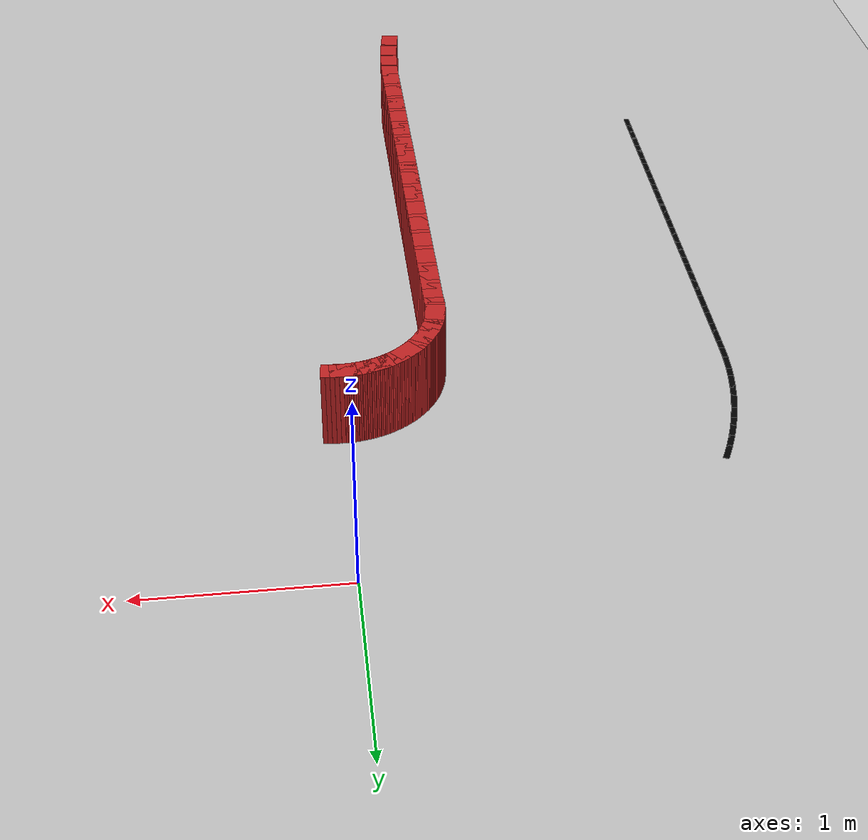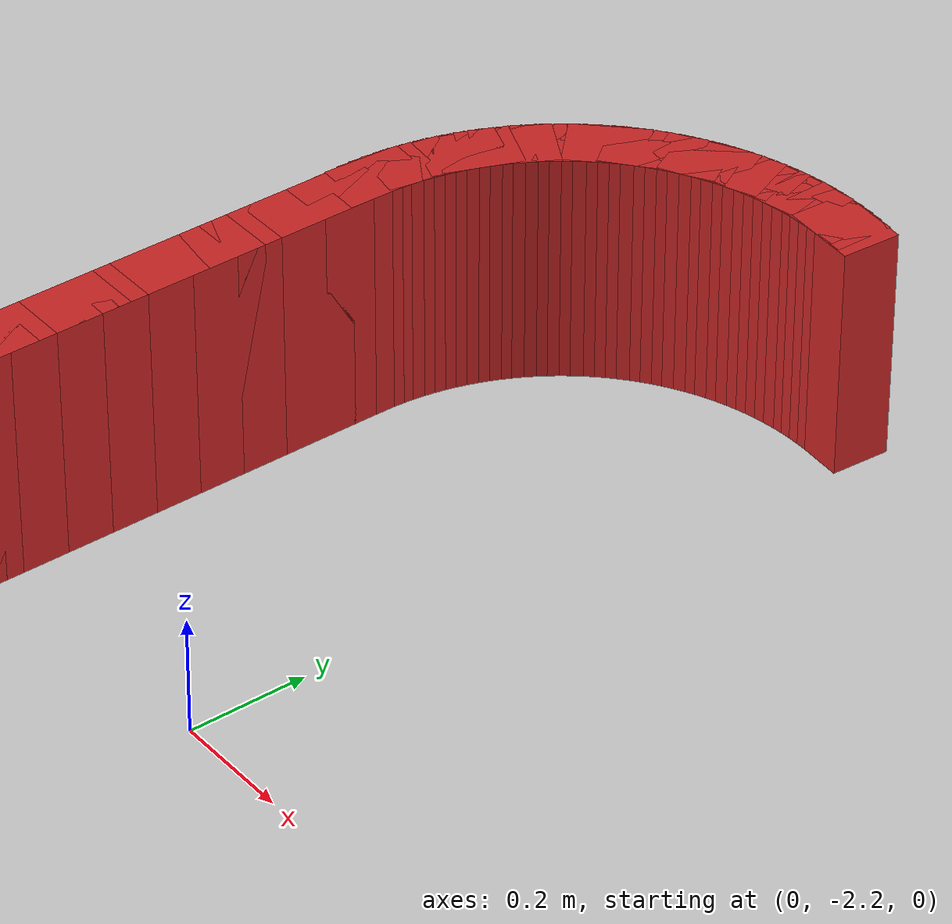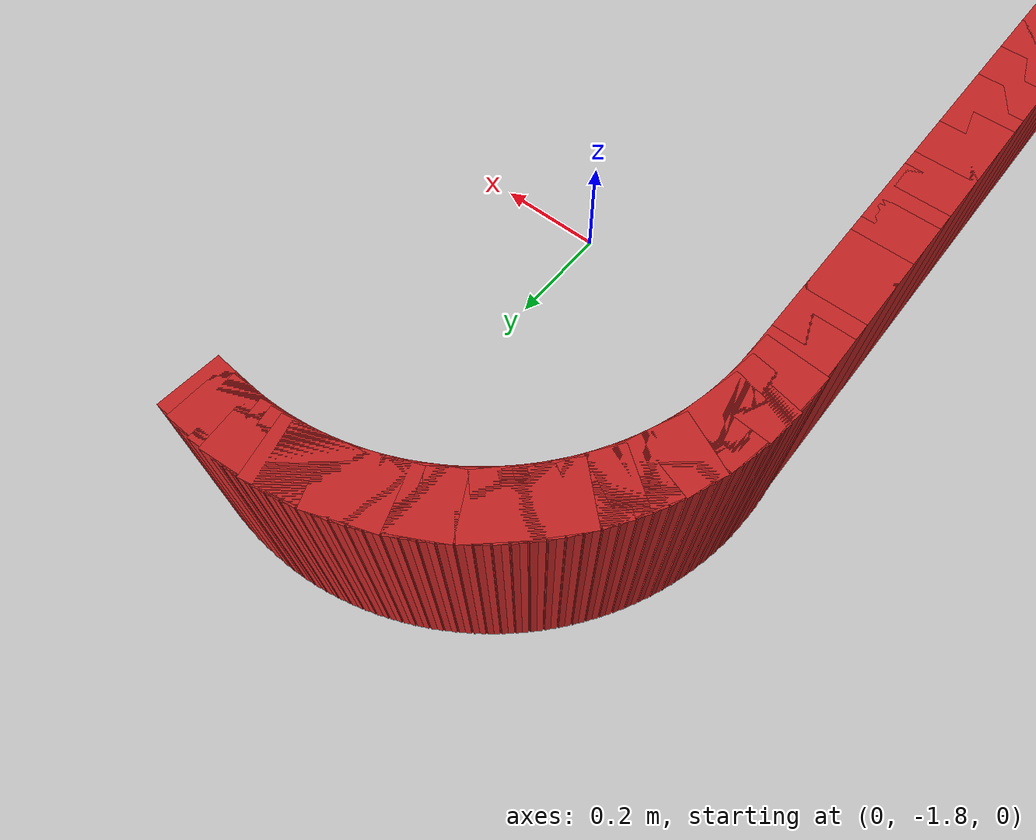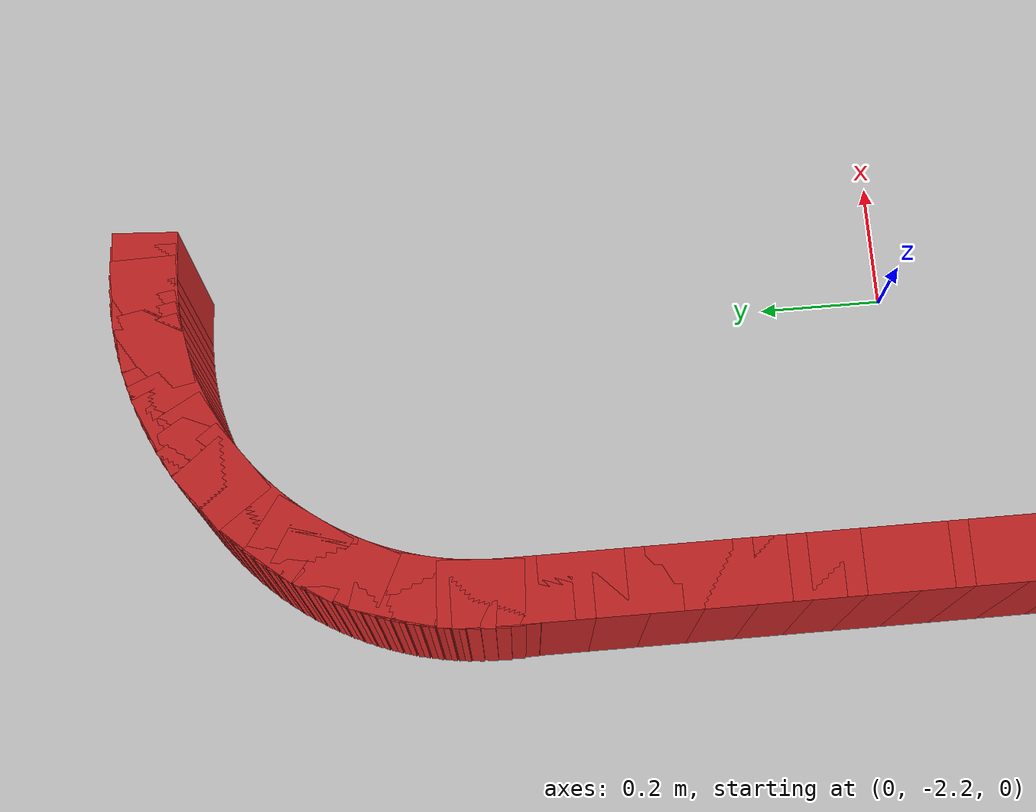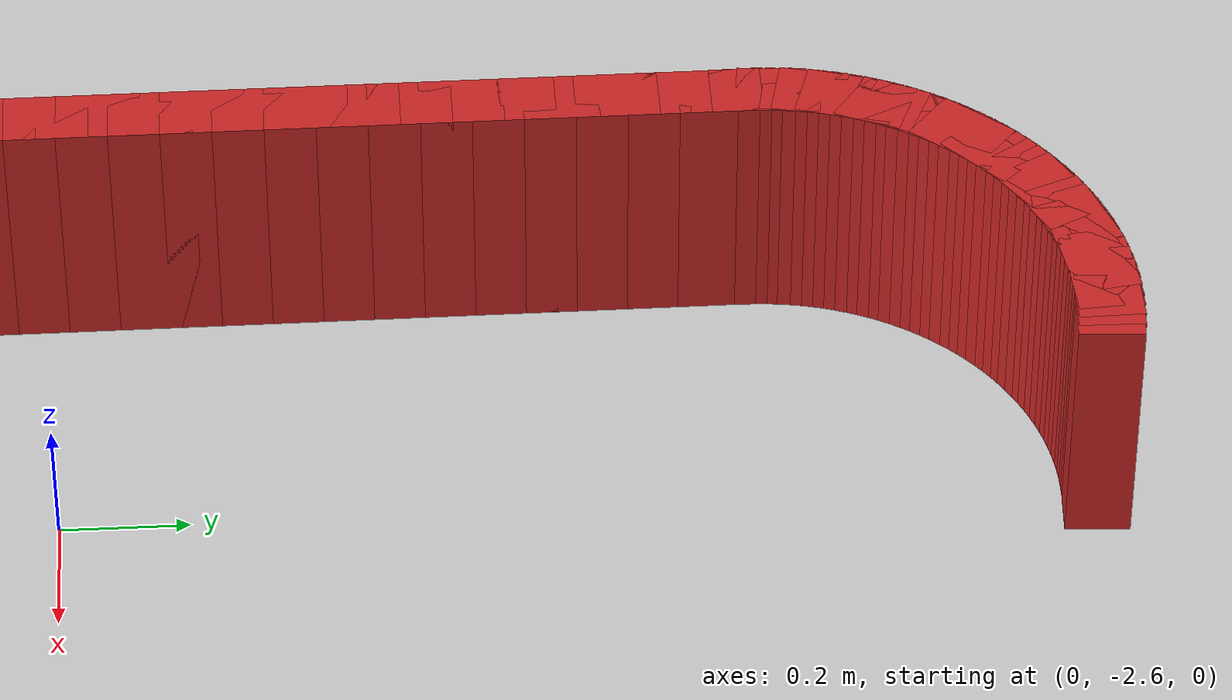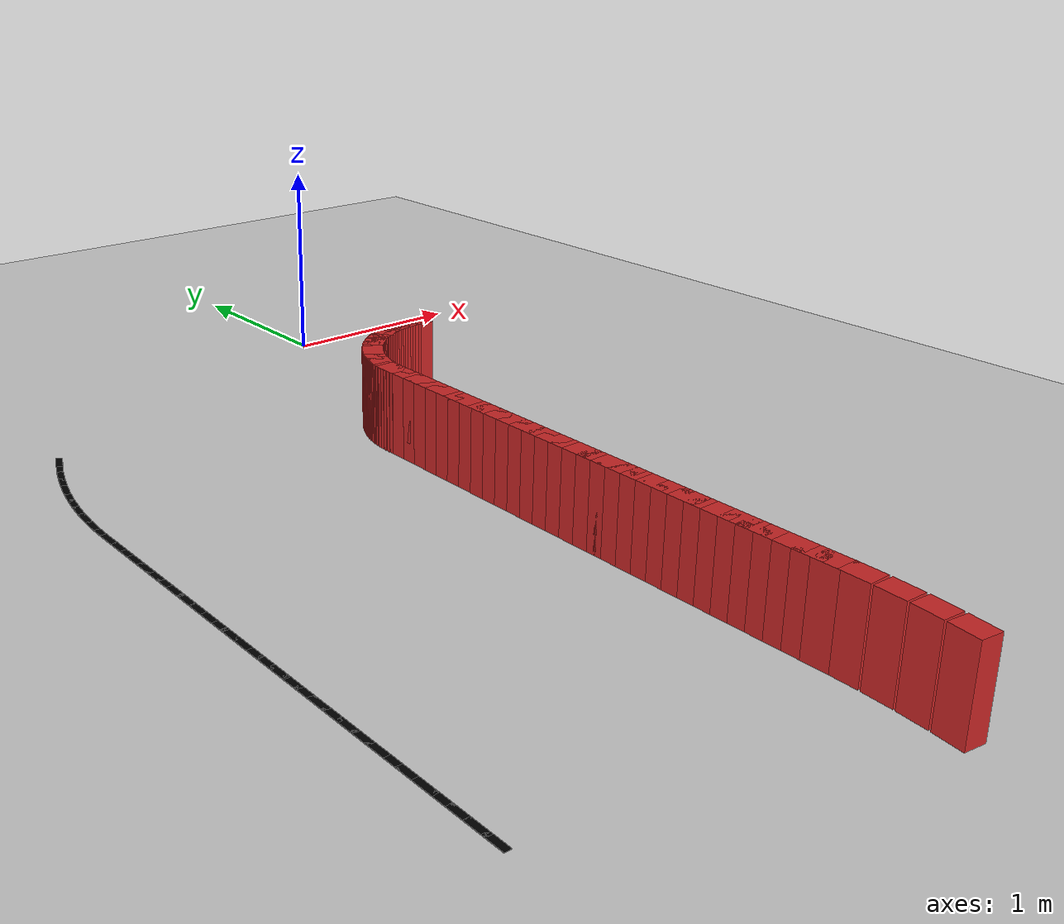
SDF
<sdf version="1.6">
 <world name="new_race_track">
  <include><uri>model://ground_plane</uri></include>
  <include><uri>model://sun</uri></include>
  <model name="ow_149">
   <static>true</static>
   <pose>-0.5351 -4.4917 0.200 0 0 1.4298</pose>
   <link name="l">
    <collision name="c"><geometry><box><size>0.1305 0.1 0.4</size></box></geometry></collision>
    <visual name="v">
     <geometry><box><size>0.1305 0.1 0.4</size></box></geometry>
     <material><ambient>0.8 0.15 0.15 1</ambient><diffuse>0.8 0.15 0.15 1</diffuse></material>
    </visual>
   </link>
  </model>
  <model name="ow_150">
   <static>true</static>
   <pose>-0.5181 -4.3518 0.200 0 0 1.4701</pose>
   <link name="l">
    <collision name="c"><geometry><box><size>0.1305 0.1 0.4</size></box></geometry></collision>
    <visual name="v">
     <geometry><box><size>0.1305 0.1 0.4</size></box></geometry>
     <material><ambient>0.8 0.15 0.15 1</ambient><diffuse>0.8 0.15 0.15 1</diffuse></material>
    </visual>
   </link>
  </model>
  <model name="ow_151">
   <static>true</static>
   <pose>-0.5068 -4.2113 0.200 0 0 1.5104</pose>
   <link name="l">
    <collision name="c"><geometry><box><size>0.1305 0.1 0.4</size></box></geometry></collision>
    <visual name="v">
     <geometry><box><size>0.1305 0.1 0.4</size></box></geometry>
     <material><ambient>0.8 0.15 0.15 1</ambient><diffuse>0.8 0.15 0.15 1</diffuse></material>
    </visual>
   </link>
  </model>
  <model name="ow_152">
   <static>true</static>
   <pose>-0.5011 -4.0705 0.200 0 0 1.5507</pose>
   <link name="l">
    <collision name="c"><geometry><box><size>0.1305 0.1 0.4</size></box></geometry></collision>
    <visual name="v">
     <geometry><box><size>0.1305 0.1 0.4</size></box></geometry>
     <material><ambient>0.8 0.15 0.15 1</ambient><diffuse>0.8 0.15 0.15 1</diffuse></material>
    </visual>
   </link>
  </model>
  <model name="ow_153">
   <static>true</static>
   <pose>-0.5000 -3.9600 0.200 0 0 1.5708</pose>
   <link name="l">
    <collision name="c"><geometry><box><size>0.1300 0.1 0.4</size></box></geometry></collision>
    <visual name="v">
     <geometry><box><size>0.1300 0.1 0.4</size></box></geometry>
     <material><ambient>0.8 0.15 0.15 1</ambient><diffuse>0.8 0.15 0.15 1</diffuse></material>
    </visual>
   </link>
  </model>
  <model name="ow_154">
   <static>true</static>
   <pose>-0.5000 -3.8800 0.200 0 0 1.5708</pose>
   <link name="l">
    <collision name="c"><geometry><box><size>0.1300 0.1 0.4</size></box></geometry></collision>
    <visual name="v">
     <geometry><box><size>0.1300 0.1 0.4</size></box></geometry>
     <material><ambient>0.8 0.15 0.15 1</ambient><diffuse>0.8 0.15 0.15 1</diffuse></material>
    </visual>
   </link>
  </model>
  <model name="ow_155">
   <static>true</static>
   <pose>-0.5000 -3.8000 0.200 0 0 1.5708</pose>
   <link name="l">
    <collision name="c"><geometry><box><size>0.1300 0.1 0.4</size></box></geometry></collision>
    <visual name="v">
     <geometry><box><size>0.1300 0.1 0.4</size></box></geometry>
     <material><ambient>0.8 0.15 0.15 1</ambient><diffuse>0.8 0.15 0.15 1</diffuse></material>
    </visual>
   </link>
  </model>
  <model name="ow_156">
   <static>true</static>
   <pose>-0.5000 -3.7200 0.200 0 0 1.5708</pose>
   <link name="l">
    <collision name="c"><geometry><box><size>0.1300 0.1 0.4</size></box></geometry></collision>
    <visual name="v">
     <geometry><box><size>0.1300 0.1 0.4</size></box></geometry>
     <material><ambient>0.8 0.15 0.15 1</ambient><diffuse>0.8 0.15 0.15 1</diffuse></material>
    </visual>
   </link>
  </model>
  <model name="ow_157">
   <static>true</static>
   <pose>-0.5000 -3.6400 0.200 0 0 1.5708</pose>
   <link name="l">
    <collision name="c"><geometry><box><size>0.1300 0.1 0.4</size></box></geometry></collision>
    <visual name="v">
     <geometry><box><size>0.1300 0.1 0.4</size></box></geometry>
     <material><ambient>0.8 0.15 0.15 1</ambient><diffuse>0.8 0.15 0.15 1</diffuse></material>
    </visual>
   </link>
  </model>
  <model name="ow_158">
   <static>true</static>
   <pose>-0.5000 -3.5600 0.200 0 0 1.5708</pose>
   <link name="l">
    <collision name="c"><geometry><box><size>0.1300 0.1 0.4</size></box></geometry></collision>
    <visual name="v">
     <geometry><box><size>0.1300 0.1 0.4</size></box></geometry>
     <material><ambient>0.8 0.15 0.15 1</ambient><diffuse>0.8 0.15 0.15 1</diffuse></material>
    </visual>
   </link>
  </model>
  <model name="ow_159">
   <static>true</static>
   <pose>-0.5000 -3.4800 0.200 0 0 1.5708</pose>
   <link name="l">
    <collision name="c"><geometry><box><size>0.1300 0.1 0.4</size></box></geometry></collision>
    <visual name="v">
     <geometry><box><size>0.1300 0.1 0.4</size></box></geometry>
     <material><ambient>0.8 0.15 0.15 1</ambient><diffuse>0.8 0.15 0.15 1</diffuse></material>
    </visual>
   </link>
  </model>
  <model name="ow_160">
   <static>true</static>
   <pose>-0.5000 -3.4000 0.200 0 0 1.5708</pose>
   <link name="l">
    <collision name="c"><geometry><box><size>0.1300 0.1 0.4</size></box></geometry></collision>
    <visual name="v">
     <geometry><box><size>0.1300 0.1 0.4</size></box></geometry>
     <material><ambient>0.8 0.15 0.15 1</ambient><diffuse>0.8 0.15 0.15 1</diffuse></material>
    </visual>
   </link>
  </model>
  <model name="ow_161">
   <static>true</static>
   <pose>-0.5000 -3.3200 0.200 0 0 1.5708</pose>
   <link name="l">
    <collision name="c"><geometry><box><size>0.1300 0.1 0.4</size></box></geometry></collision>
    <visual name="v">
     <geometry><box><size>0.1300 0.1 0.4</size></box></geometry>
     <material><ambient>0.8 0.15 0.15 1</ambient><diffuse>0.8 0.15 0.15 1</diffuse></material>
    </visual>
   </link>
  </model>
  <model name="ow_162">
   <static>true</static>
   <pose>-0.5000 -3.2400 0.200 0 0 1.5708</pose>
   <link name="l">
    <collision name="c"><geometry><box><size>0.1300 0.1 0.4</size></box></geometry></collision>
    <visual name="v">
     <geometry><box><size>0.1300 0.1 0.4</size></box></geometry>
     <material><ambient>0.8 0.15 0.15 1</ambient><diffuse>0.8 0.15 0.15 1</diffuse></material>
    </visual>
   </link>
  </model>
  <model name="ow_163">
   <static>true</static>
   <pose>-0.5000 -3.1600 0.200 0 0 1.5708</pose>
   <link name="l">
    <collision name="c"><geometry><box><size>0.1300 0.1 0.4</size></box></geometry></collision>
    <visual name="v">
     <geometry><box><size>0.1300 0.1 0.4</size></box></geometry>
     <material><ambient>0.8 0.15 0.15 1</ambient><diffuse>0.8 0.15 0.15 1</diffuse></material>
    </visual>
   </link>
  </model>
  <model name="ow_164">
   <static>true</static>
   <pose>-0.5000 -3.0800 0.200 0 0 1.5708</pose>
   <link name="l">
    <collision name="c"><geometry><box><size>0.1300 0.1 0.4</size></box></geometry></collision>
    <visual name="v">
     <geometry><box><size>0.1300 0.1 0.4</size></box></geometry>
     <material><ambient>0.8 0.15 0.15 1</ambient><diffuse>0.8 0.15 0.15 1</diffuse></material>
    </visual>
   </link>
  </model>
  <model name="ow_165">
   <static>true</static>
   <pose>-0.5000 -3.0000 0.200 0 0 1.5708</pose>
   <link name="l">
    <collision name="c"><geometry><box><size>0.1300 0.1 0.4</size></box></geometry></collision>
    <visual name="v">
     <geometry><box><size>0.1300 0.1 0.4</size></box></geometry>
     <material><ambient>0.8 0.15 0.15 1</ambient><diffuse>0.8 0.15 0.15 1</diffuse></material>
    </visual>
   </link>
  </model>
  <model name="ow_166">
   <static>true</static>
   <pose>-0.5000 -2.9200 0.200 0 0 1.5708</pose>
   <link name="l">
    <collision name="c"><geometry><box><size>0.1300 0.1 0.4</size></box></geometry></collision>
    <visual name="v">
     <geometry><box><size>0.1300 0.1 0.4</size></box></geometry>
     <material><ambient>0.8 0.15 0.15 1</ambient><diffuse>0.8 0.15 0.15 1</diffuse></material>
    </visual>
   </link>
  </model>
  <model name="ow_167">
   <static>true</static>
   <pose>-0.5000 -2.8400 0.200 0 0 1.5708</pose>
   <link name="l">
    <collision name="c"><geometry><box><size>0.1300 0.1 0.4</size></box></geometry></collision>
    <visual name="v">
     <geometry><box><size>0.1300 0.1 0.4</size></box></geometry>
     <material><ambient>0.8 0.15 0.15 1</ambient><diffuse>0.8 0.15 0.15 1</diffuse></material>
    </visual>
   </link>
  </model>
  <model name="ow_168">
   <static>true</static>
   <pose>-0.5000 -2.7600 0.200 0 0 1.5708</pose>
   <link name="l">
    <collision name="c"><geometry><box><size>0.1300 0.1 0.4</size></box></geometry></collision>
    <visual name="v">
     <geometry><box><size>0.1300 0.1 0.4</size></box></geometry>
     <material><ambient>0.8 0.15 0.15 1</ambient><diffuse>0.8 0.15 0.15 1</diffuse></material>
    </visual>
   </link>
  </model>
  <model name="ow_169">
   <static>true</static>
   <pose>-0.5000 -2.6800 0.200 0 0 1.5708</pose>
   <link name="l">
    <collision name="c"><geometry><box><size>0.1300 0.1 0.4</size></box></geometry></collision>
    <visual name="v">
     <geometry><box><size>0.1300 0.1 0.4</size></box></geometry>
     <material><ambient>0.8 0.15 0.15 1</ambient><diffuse>0.8 0.15 0.15 1</diffuse></material>
    </visual>
   </link>
  </model>
  <model name="ow_170">
   <static>true</static>
   <pose>-0.5000 -2.6000 0.200 0 0 1.5708</pose>
   <link name="l">
    <collision name="c"><geometry><box><size>0.1300 0.1 0.4</size></box></geometry></collision>
    <visual name="v">
     <geometry><box><size>0.1300 0.1 0.4</size></box></geometry>
     <material><ambient>0.8 0.15 0.15 1</ambient><diffuse>0.8 0.15 0.15 1</diffuse></material>
    </visual>
   </link>
  </model>
  <model name="ow_171">
   <static>true</static>
   <pose>-0.5000 -2.5200 0.200 0 0 1.5708</pose>
   <link name="l">
    <collision name="c"><geometry><box><size>0.1300 0.1 0.4</size></box></geometry></collision>
    <visual name="v">
     <geometry><box><size>0.1300 0.1 0.4</size></box></geometry>
     <material><ambient>0.8 0.15 0.15 1</ambient><diffuse>0.8 0.15 0.15 1</diffuse></material>
    </visual>
   </link>
  </model>
  <model name="ow_172">
   <static>true</static>
   <pose>-0.5000 -2.4400 0.200 0 0 1.5708</pose>
   <link name="l">
    <collision name="c"><geometry><box><size>0.1300 0.1 0.4</size></box></geometry></collision>
    <visual name="v">
     <geometry><box><size>0.1300 0.1 0.4</size></box></geometry>
     <material><ambient>0.8 0.15 0.15 1</ambient><diffuse>0.8 0.15 0.15 1</diffuse></material>
    </visual>
   </link>
  </model>
  <model name="ow_173">
   <static>true</static>
   <pose>-0.5000 -2.3600 0.200 0 0 1.5708</pose>
   <link name="l">
    <collision name="c"><geometry><box><size>0.1300 0.1 0.4</size></box></geometry></collision>
    <visual name="v">
     <geometry><box><size>0.1300 0.1 0.4</size></box></geometry>
     <material><ambient>0.8 0.15 0.15 1</ambient><diffuse>0.8 0.15 0.15 1</diffuse></material>
    </visual>
   </link>
  </model>
  <model name="ow_174">
   <static>true</static>
   <pose>-0.5000 -2.2800 0.200 0 0 1.5708</pose>
   <link name="l">
    <collision name="c"><geometry><box><size>0.1300 0.1 0.4</size></box></geometry></collision>
    <visual name="v">
     <geometry><box><size>0.1300 0.1 0.4</size></box></geometry>
     <material><ambient>0.8 0.15 0.15 1</ambient><diffuse>0.8 0.15 0.15 1</diffuse></material>
    </visual>
   </link>
  </model>
  <model name="ow_175">
   <static>true</static>
   <pose>-0.5000 -2.2000 0.200 0 0 1.5708</pose>
   <link name="l">
    <collision name="c"><geometry><box><size>0.1300 0.1 0.4</size></box></geometry></collision>
    <visual name="v">
     <geometry><box><size>0.1300 0.1 0.4</size></box></geometry>
     <material><ambient>0.8 0.15 0.15 1</ambient><diffuse>0.8 0.15 0.15 1</diffuse></material>
    </visual>
   </link>
  </model>
  <model name="ow_176">
   <static>true</static>
   <pose>-0.5000 -2.1200 0.200 0 0 1.5708</pose>
   <link name="l">
    <collision name="c"><geometry><box><size>0.1300 0.1 0.4</size></box></geometry></collision>
    <visual name="v">
     <geometry><box><size>0.1300 0.1 0.4</size></box></geometry>
     <material><ambient>0.8 0.15 0.15 1</ambient><diffuse>0.8 0.15 0.15 1</diffuse></material>
    </visual>
   </link>
  </model>
  <model name="ow_177">
   <static>true</static>
   <pose>-0.5000 -2.0400 0.200 0 0 1.5708</pose>
   <link name="l">
    <collision name="c"><geometry><box><size>0.1300 0.1 0.4</size></box></geometry></collision>
    <visual name="v">
     <geometry><box><size>0.1300 0.1 0.4</size></box></geometry>
     <material><ambient>0.8 0.15 0.15 1</ambient><diffuse>0.8 0.15 0.15 1</diffuse></material>
    </visual>
   </link>
  </model>
  <model name="ow_178">
   <static>true</static>
   <pose>-0.5000 -1.9600 0.200 0 0 1.5708</pose>
   <link name="l">
    <collision name="c"><geometry><box><size>0.1300 0.1 0.4</size></box></geometry></collision>
    <visual name="v">
     <geometry><box><size>0.1300 0.1 0.4</size></box></geometry>
     <material><ambient>0.8 0.15 0.15 1</ambient><diffuse>0.8 0.15 0.15 1</diffuse></material>
    </visual>
   </link>
  </model>
  <model name="ow_179">
   <static>true</static>
   <pose>-0.5000 -1.8800 0.200 0 0 1.5708</pose>
   <link name="l">
    <collision name="c"><geometry><box><size>0.1300 0.1 0.4</size></box></geometry></collision>
    <visual name="v">
     <geometry><box><size>0.1300 0.1 0.4</size></box></geometry>
     <material><ambient>0.8 0.15 0.15 1</ambient><diffuse>0.8 0.15 0.15 1</diffuse></material>
    </visual>
   </link>
  </model>
  <model name="ow_180">
   <static>true</static>
   <pose>-0.5000 -1.8000 0.200 0 0 1.5708</pose>
   <link name="l">
    <collision name="c"><geometry><box><size>0.1300 0.1 0.4</size></box></geometry></collision>
    <visual name="v">
     <geometry><box><size>0.1300 0.1 0.4</size></box></geometry>
     <material><ambient>0.8 0.15 0.15 1</ambient><diffuse>0.8 0.15 0.15 1</diffuse></material>
    </visual>
   </link>
  </model>
  <model name="ow_181">
   <static>true</static>
   <pose>-0.5000 -1.7200 0.200 0 0 1.5708</pose>
   <link name="l">
    <collision name="c"><geometry><box><size>0.1300 0.1 0.4</size></box></geometry></collision>
    <visual name="v">
     <geometry><box><size>0.1300 0.1 0.4</size></box></geometry>
     <material><ambient>0.8 0.15 0.15 1</ambient><diffuse>0.8 0.15 0.15 1</diffuse></material>
    </visual>
   </link>
  </model>
  <model name="ow_182">
   <static>true</static>
   <pose>-0.5000 -1.6400 0.200 0 0 1.5708</pose>
   <link name="l">
    <collision name="c"><geometry><box><size>0.1300 0.1 0.4</size></box></geometry></collision>
    <visual name="v">
     <geometry><box><size>0.1300 0.1 0.4</size></box></geometry>
     <material><ambient>0.8 0.15 0.15 1</ambient><diffuse>0.8 0.15 0.15 1</diffuse></material>
    </visual>
   </link>
  </model>
  <model name="ow_183">
   <static>true</static>
   <pose>-0.5000 -1.5600 0.200 0 0 1.5708</pose>
   <link name="l">
    <collision name="c"><geometry><box><size>0.1300 0.1 0.4</size></box></geometry></collision>
    <visual name="v">
     <geometry><box><size>0.1300 0.1 0.4</size></box></geometry>
     <material><ambient>0.8 0.15 0.15 1</ambient><diffuse>0.8 0.15 0.15 1</diffuse></material>
    </visual>
   </link>
  </model>
  <model name="ow_184">
   <static>true</static>
   <pose>-0.4995 -1.5099 0.200 0 0 1.5507</pose>
   <link name="l">
    <collision name="c"><geometry><box><size>0.1305 0.1 0.4</size></box></geometry></collision>
    <visual name="v">
     <geometry><box><size>0.1305 0.1 0.4</size></box></geometry>
     <material><ambient>0.8 0.15 0.15 1</ambient><diffuse>0.8 0.15 0.15 1</diffuse></material>
    </visual>
   </link>
  </model>
  <model name="ow_185">
   <static>true</static>
   <pose>-0.4987 -1.4898 0.200 0 0 1.5104</pose>
   <link name="l">
    <collision name="c"><geometry><box><size>0.1305 0.1 0.4</size></box></geometry></collision>
    <visual name="v">
     <geometry><box><size>0.1305 0.1 0.4</size></box></geometry>
     <material><ambient>0.8 0.15 0.15 1</ambient><diffuse>0.8 0.15 0.15 1</diffuse></material>
    </visual>
   </link>
  </model>
  <model name="ow_186">
   <static>true</static>
   <pose>-0.4971 -1.4698 0.200 0 0 1.4701</pose>
   <link name="l">
    <collision name="c"><geometry><box><size>0.1305 0.1 0.4</size></box></geometry></collision>
    <visual name="v">
     <geometry><box><size>0.1305 0.1 0.4</size></box></geometry>
     <material><ambient>0.8 0.15 0.15 1</ambient><diffuse>0.8 0.15 0.15 1</diffuse></material>
    </visual>
   </link>
  </model>
  <model name="ow_187">
   <static>true</static>
   <pose>-0.4946 -1.4498 0.200 0 0 1.4298</pose>
   <link name="l">
    <collision name="c"><geometry><box><size>0.1305 0.1 0.4</size></box></geometry></collision>
    <visual name="v">
     <geometry><box><size>0.1305 0.1 0.4</size></box></geometry>
     <material><ambient>0.8 0.15 0.15 1</ambient><diffuse>0.8 0.15 0.15 1</diffuse></material>
    </visual>
   </link>
  </model>
  <model name="ow_188">
   <static>true</static>
   <pose>-0.4914 -1.4299 0.200 0 0 1.3896</pose>
   <link name="l">
    <collision name="c"><geometry><box><size>0.1305 0.1 0.4</size></box></geometry></collision>
    <visual name="v">
     <geometry><box><size>0.1305 0.1 0.4</size></box></geometry>
     <material><ambient>0.8 0.15 0.15 1</ambient><diffuse>0.8 0.15 0.15 1</diffuse></material>
    </visual>
   </link>
  </model>
  <model name="ow_189">
   <static>true</static>
   <pose>-0.4874 -1.4102 0.200 0 0 1.3493</pose>
   <link name="l">
    <collision name="c"><geometry><box><size>0.1305 0.1 0.4</size></box></geometry></collision>
    <visual name="v">
     <geometry><box><size>0.1305 0.1 0.4</size></box></geometry>
     <material><ambient>0.8 0.15 0.15 1</ambient><diffuse>0.8 0.15 0.15 1</diffuse></material>
    </visual>
   </link>
  </model>
  <model name="ow_190">
   <static>true</static>
   <pose>-0.4826 -1.3907 0.200 0 0 1.3090</pose>
   <link name="l">
    <collision name="c"><geometry><box><size>0.1305 0.1 0.4</size></box></geometry></collision>
    <visual name="v">
     <geometry><box><size>0.1305 0.1 0.4</size></box></geometry>
     <material><ambient>0.8 0.15 0.15 1</ambient><diffuse>0.8 0.15 0.15 1</diffuse></material>
    </visual>
   </link>
  </model>
  <model name="ow_191">
   <static>true</static>
   <pose>-0.4770 -1.3714 0.200 0 0 1.2687</pose>
   <link name="l">
    <collision name="c"><geometry><box><size>0.1305 0.1 0.4</size></box></geometry></collision>
    <visual name="v">
     <geometry><box><size>0.1305 0.1 0.4</size></box></geometry>
     <material><ambient>0.8 0.15 0.15 1</ambient><diffuse>0.8 0.15 0.15 1</diffuse></material>
    </visual>
   </link>
  </model>
  <model name="ow_192">
   <static>true</static>
   <pose>-0.4706 -1.3523 0.200 0 0 1.2284</pose>
   <link name="l">
    <collision name="c"><geometry><box><size>0.1305 0.1 0.4</size></box></geometry></collision>
    <visual name="v">
     <geometry><box><size>0.1305 0.1 0.4</size></box></geometry>
     <material><ambient>0.8 0.15 0.15 1</ambient><diffuse>0.8 0.15 0.15 1</diffuse></material>
    </visual>
   </link>
  </model>
  <model name="ow_193">
   <static>true</static>
   <pose>-0.4635 -1.3335 0.200 0 0 1.1882</pose>
   <link name="l">
    <collision name="c"><geometry><box><size>0.1305 0.1 0.4</size></box></geometry></collision>
    <visual name="v">
     <geometry><box><size>0.1305 0.1 0.4</size></box></geometry>
     <material><ambient>0.8 0.15 0.15 1</ambient><diffuse>0.8 0.15 0.15 1</diffuse></material>
    </visual>
   </link>
  </model>
  <model name="ow_194">
   <static>true</static>
   <pose>-0.4556 -1.3150 0.200 0 0 1.1479</pose>
   <link name="l">
    <collision name="c"><geometry><box><size>0.1305 0.1 0.4</size></box></geometry></collision>
    <visual name="v">
     <geometry><box><size>0.1305 0.1 0.4</size></box></geometry>
     <material><ambient>0.8 0.15 0.15 1</ambient><diffuse>0.8 0.15 0.15 1</diffuse></material>
    </visual>
   </link>
  </model>
  <model name="ow_195">
   <static>true</static>
   <pose>-0.4470 -1.2968 0.200 0 0 1.1076</pose>
   <link name="l">
    <collision name="c"><geometry><box><size>0.1305 0.1 0.4</size></box></geometry></collision>
    <visual name="v">
     <geometry><box><size>0.1305 0.1 0.4</size></box></geometry>
     <material><ambient>0.8 0.15 0.15 1</ambient><diffuse>0.8 0.15 0.15 1</diffuse></material>
    </visual>
   </link>
  </model>
  <model name="ow_196">
   <static>true</static>
   <pose>-0.4376 -1.2790 0.200 0 0 1.0673</pose>
   <link name="l">
    <collision name="c"><geometry><box><size>0.1305 0.1 0.4</size></box></geometry></collision>
    <visual name="v">
     <geometry><box><size>0.1305 0.1 0.4</size></box></geometry>
     <material><ambient>0.8 0.15 0.15 1</ambient><diffuse>0.8 0.15 0.15 1</diffuse></material>
    </visual>
   </link>
  </model>
  <model name="ow_197">
   <static>true</static>
   <pose>-0.4275 -1.2615 0.200 0 0 1.0271</pose>
   <link name="l">
    <collision name="c"><geometry><box><size>0.1305 0.1 0.4</size></box></geometry></collision>
    <visual name="v">
     <geometry><box><size>0.1305 0.1 0.4</size></box></geometry>
     <material><ambient>0.8 0.15 0.15 1</ambient><diffuse>0.8 0.15 0.15 1</diffuse></material>
    </visual>
   </link>
  </model>
  <model name="ow_198">
   <static>true</static>
   <pose>-0.4168 -1.2445 0.200 0 0 0.9868</pose>
   <link name="l">
    <collision name="c"><geometry><box><size>0.1305 0.1 0.4</size></box></geometry></collision>
    <visual name="v">
     <geometry><box><size>0.1305 0.1 0.4</size></box></geometry>
     <material><ambient>0.8 0.15 0.15 1</ambient><diffuse>0.8 0.15 0.15 1</diffuse></material>
    </visual>
   </link>
  </model>
  <model name="ow_199">
   <static>true</static>
   <pose>-0.4054 -1.2280 0.200 0 0 0.9465</pose>
   <link name="l">
    <collision name="c"><geometry><box><size>0.1305 0.1 0.4</size></box></geometry></collision>
    <visual name="v">
     <geometry><box><size>0.1305 0.1 0.4</size></box></geometry>
     <material><ambient>0.8 0.15 0.15 1</ambient><diffuse>0.8 0.15 0.15 1</diffuse></material>
    </visual>
   </link>
  </model>
  <model name="ow_200">
   <static>true</static>
   <pose>-0.3933 -1.2119 0.200 0 0 0.9062</pose>
   <link name="l">
    <collision name="c"><geometry><box><size>0.1305 0.1 0.4</size></box></geometry></collision>
    <visual name="v">
     <geometry><box><size>0.1305 0.1 0.4</size></box></geometry>
     <material><ambient>0.8 0.15 0.15 1</ambient><diffuse>0.8 0.15 0.15 1</diffuse></material>
    </visual>
   </link>
  </model>
  <model name="ow_201">
   <static>true</static>
   <pose>-0.3805 -1.1963 0.200 0 0 0.8660</pose>
   <link name="l">
    <collision name="c"><geometry><box><size>0.1305 0.1 0.4</size></box></geometry></collision>
    <visual name="v">
     <geometry><box><size>0.1305 0.1 0.4</size></box></geometry>
     <material><ambient>0.8 0.15 0.15 1</ambient><diffuse>0.8 0.15 0.15 1</diffuse></material>
    </visual>
   </link>
  </model>
  <model name="ow_202">
   <static>true</static>
   <pose>-0.3672 -1.1812 0.200 0 0 0.8257</pose>
   <link name="l">
    <collision name="c"><geometry><box><size>0.1305 0.1 0.4</size></box></geometry></collision>
    <visual name="v">
     <geometry><box><size>0.1305 0.1 0.4</size></box></geometry>
     <material><ambient>0.8 0.15 0.15 1</ambient><diffuse>0.8 0.15 0.15 1</diffuse></material>
    </visual>
   </link>
  </model>
  <model name="ow_203">
   <static>true</static>
   <pose>-0.3533 -1.1667 0.200 0 0 0.7854</pose>
   <link name="l">
    <collision name="c"><geometry><box><size>0.1305 0.1 0.4</size></box></geometry></collision>
    <visual name="v">
     <geometry><box><size>0.1305 0.1 0.4</size></box></geometry>
     <material><ambient>0.8 0.15 0.15 1</ambient><diffuse>0.8 0.15 0.15 1</diffuse></material>
    </visual>
   </link>
  </model>
  <model name="ow_204">
   <static>true</static>
   <pose>-0.3388 -1.1528 0.200 0 0 0.7451</pose>
   <link name="l">
    <collision name="c"><geometry><box><size>0.1305 0.1 0.4</size></box></geometry></collision>
    <visual name="v">
     <geometry><box><size>0.1305 0.1 0.4</size></box></geometry>
     <material><ambient>0.8 0.15 0.15 1</ambient><diffuse>0.8 0.15 0.15 1</diffuse></material>
    </visual>
   </link>
  </model>
  <model name="ow_205">
   <static>true</static>
   <pose>-0.3237 -1.1395 0.200 0 0 0.7048</pose>
   <link name="l">
    <collision name="c"><geometry><box><size>0.1305 0.1 0.4</size></box></geometry></collision>
    <visual name="v">
     <geometry><box><size>0.1305 0.1 0.4</size></box></geometry>
     <material><ambient>0.8 0.15 0.15 1</ambient><diffuse>0.8 0.15 0.15 1</diffuse></material>
    </visual>
   </link>
  </model>
  <model name="ow_206">
   <static>true</static>
   <pose>-0.3081 -1.1267 0.200 0 0 0.6646</pose>
   <link name="l">
    <collision name="c"><geometry><box><size>0.1305 0.1 0.4</size></box></geometry></collision>
    <visual name="v">
     <geometry><box><size>0.1305 0.1 0.4</size></box></geometry>
     <material><ambient>0.8 0.15 0.15 1</ambient><diffuse>0.8 0.15 0.15 1</diffuse></material>
    </visual>
   </link>
  </model>
  <model name="ow_207">
   <static>true</static>
   <pose>-0.2920 -1.1146 0.200 0 0 0.6243</pose>
   <link name="l">
    <collision name="c"><geometry><box><size>0.1305 0.1 0.4</size></box></geometry></collision>
    <visual name="v">
     <geometry><box><size>0.1305 0.1 0.4</size></box></geometry>
     <material><ambient>0.8 0.15 0.15 1</ambient><diffuse>0.8 0.15 0.15 1</diffuse></material>
    </visual>
   </link>
  </model>
  <model name="ow_208">
   <static>true</static>
   <pose>-0.2755 -1.1032 0.200 0 0 0.5840</pose>
   <link name="l">
    <collision name="c"><geometry><box><size>0.1305 0.1 0.4</size></box></geometry></collision>
    <visual name="v">
     <geometry><box><size>0.1305 0.1 0.4</size></box></geometry>
     <material><ambient>0.8 0.15 0.15 1</ambient><diffuse>0.8 0.15 0.15 1</diffuse></material>
    </visual>
   </link>
  </model>
  <model name="ow_209">
   <static>true</static>
   <pose>-0.2585 -1.0925 0.200 0 0 0.5437</pose>
   <link name="l">
    <collision name="c"><geometry><box><size>0.1305 0.1 0.4</size></box></geometry></collision>
    <visual name="v">
     <geometry><box><size>0.1305 0.1 0.4</size></box></geometry>
     <material><ambient>0.8 0.15 0.15 1</ambient><diffuse>0.8 0.15 0.15 1</diffuse></material>
    </visual>
   </link>
  </model>
  <model name="ow_210">
   <static>true</static>
   <pose>-0.2410 -1.0824 0.200 0 0 0.5035</pose>
   <link name="l">
    <collision name="c"><geometry><box><size>0.1305 0.1 0.4</size></box></geometry></collision>
    <visual name="v">
     <geometry><box><size>0.1305 0.1 0.4</size></box></geometry>
     <material><ambient>0.8 0.15 0.15 1</ambient><diffuse>0.8 0.15 0.15 1</diffuse></material>
    </visual>
   </link>
  </model>
  <model name="ow_211">
   <static>true</static>
   <pose>-0.2232 -1.0730 0.200 0 0 0.4632</pose>
   <link name="l">
    <collision name="c"><geometry><box><size>0.1305 0.1 0.4</size></box></geometry></collision>
    <visual name="v">
     <geometry><box><size>0.1305 0.1 0.4</size></box></geometry>
     <material><ambient>0.8 0.15 0.15 1</ambient><diffuse>0.8 0.15 0.15 1</diffuse></material>
    </visual>
   </link>
  </model>
  <model name="ow_212">
   <static>true</static>
   <pose>-0.2050 -1.0644 0.200 0 0 0.4229</pose>
   <link name="l">
    <collision name="c"><geometry><box><size>0.1305 0.1 0.4</size></box></geometry></collision>
    <visual name="v">
     <geometry><box><size>0.1305 0.1 0.4</size></box></geometry>
     <material><ambient>0.8 0.15 0.15 1</ambient><diffuse>0.8 0.15 0.15 1</diffuse></material>
    </visual>
   </link>
  </model>
  <model name="ow_213">
   <static>true</static>
   <pose>-0.1865 -1.0565 0.200 0 0 0.3826</pose>
   <link name="l">
    <collision name="c"><geometry><box><size>0.1305 0.1 0.4</size></box></geometry></collision>
    <visual name="v">
     <geometry><box><size>0.1305 0.1 0.4</size></box></geometry>
     <material><ambient>0.8 0.15 0.15 1</ambient><diffuse>0.8 0.15 0.15 1</diffuse></material>
    </visual>
   </link>
  </model>
  <model name="ow_214">
   <static>true</static>
   <pose>-0.1677 -1.0494 0.200 0 0 0.3424</pose>
   <link name="l">
    <collision name="c"><geometry><box><size>0.1305 0.1 0.4</size></box></geometry></collision>
    <visual name="v">
     <geometry><box><size>0.1305 0.1 0.4</size></box></geometry>
     <material><ambient>0.8 0.15 0.15 1</ambient><diffuse>0.8 0.15 0.15 1</diffuse></material>
    </visual>
   </link>
  </model>
  <model name="ow_215">
   <static>true</static>
   <pose>-0.1486 -1.0430 0.200 0 0 0.3021</pose>
   <link name="l">
    <collision name="c"><geometry><box><size>0.1305 0.1 0.4</size></box></geometry></collision>
    <visual name="v">
     <geometry><box><size>0.1305 0.1 0.4</size></box></geometry>
     <material><ambient>0.8 0.15 0.15 1</ambient><diffuse>0.8 0.15 0.15 1</diffuse></material>
    </visual>
   </link>
  </model>
  <model name="ow_216">
   <static>true</static>
   <pose>-0.1293 -1.0374 0.200 0 0 0.2618</pose>
   <link name="l">
    <collision name="c"><geometry><box><size>0.1305 0.1 0.4</size></box></geometry></collision>
    <visual name="v">
     <geometry><box><size>0.1305 0.1 0.4</size></box></geometry>
     <material><ambient>0.8 0.15 0.15 1</ambient><diffuse>0.8 0.15 0.15 1</diffuse></material>
    </visual>
   </link>
  </model>
  <model name="ow_217">
   <static>true</static>
   <pose>-0.1098 -1.0326 0.200 0 0 0.2215</pose>
   <link name="l">
    <collision name="c"><geometry><box><size>0.1305 0.1 0.4</size></box></geometry></collision>
    <visual name="v">
     <geometry><box><size>0.1305 0.1 0.4</size></box></geometry>
     <material><ambient>0.8 0.15 0.15 1</ambient><diffuse>0.8 0.15 0.15 1</diffuse></material>
    </visual>
   </link>
  </model>
  <model name="ow_218">
   <static>true</static>
   <pose>-0.0901 -1.0286 0.200 0 0 0.1812</pose>
   <link name="l">
    <collision name="c"><geometry><box><size>0.1305 0.1 0.4</size></box></geometry></collision>
    <visual name="v">
     <geometry><box><size>0.1305 0.1 0.4</size></box></geometry>
     <material><ambient>0.8 0.15 0.15 1</ambient><diffuse>0.8 0.15 0.15 1</diffuse></material>
    </visual>
   </link>
  </model>
  <model name="ow_219">
   <static>true</static>
   <pose>-0.0702 -1.0254 0.200 0 0 0.1410</pose>
   <link name="l">
    <collision name="c"><geometry><box><size>0.1305 0.1 0.4</size></box></geometry></collision>
    <visual name="v">
     <geometry><box><size>0.1305 0.1 0.4</size></box></geometry>
     <material><ambient>0.8 0.15 0.15 1</ambient><diffuse>0.8 0.15 0.15 1</diffuse></material>
    </visual>
   </link>
  </model>
  <model name="ow_220">
   <static>true</static>
   <pose>-0.0502 -1.0229 0.200 0 0 0.1007</pose>
   <link name="l">
    <collision name="c"><geometry><box><size>0.1305 0.1 0.4</size></box></geometry></collision>
    <visual name="v">
     <geometry><box><size>0.1305 0.1 0.4</size></box></geometry>
     <material><ambient>0.8 0.15 0.15 1</ambient><diffuse>0.8 0.15 0.15 1</diffuse></material>
    </visual>
   </link>
  </model>
  <model name="ow_221">
   <static>true</static>
   <pose>-0.0302 -1.0213 0.200 0 0 0.0604</pose>
   <link name="l">
    <collision name="c"><geometry><box><size>0.1305 0.1 0.4</size></box></geometry></collision>
    <visual name="v">
     <geometry><box><size>0.1305 0.1 0.4</size></box></geometry>
     <material><ambient>0.8 0.15 0.15 1</ambient><diffuse>0.8 0.15 0.15 1</diffuse></material>
    </visual>
   </link>
  </model>
  <model name="ow_222">
   <static>true</static>
   <pose>-0.0101 -1.0205 0.200 0 0 0.0201</pose>
   <link name="l">
    <collision name="c"><geometry><box><size>0.1305 0.1 0.4</size></box></geometry></collision>
    <visual name="v">
     <geometry><box><size>0.1305 0.1 0.4</size></box></geometry>
     <material><ambient>0.8 0.15 0.15 1</ambient><diffuse>0.8 0.15 0.15 1</diffuse></material>
    </visual>
   </link>
  </model>
  <model name="ow_223">
   <static>true</static>
   <pose>0.0101 -1.0205 0.200 0 0 -0.0201</pose>
   <link name="l">
    <collision name="c"><geometry><box><size>0.1305 0.1 0.4</size></box></geometry></collision>
    <visual name="v">
     <geometry><box><size>0.1305 0.1 0.4</size></box></geometry>
     <material><ambient>0.8 0.15 0.15 1</ambient><diffuse>0.8 0.15 0.15 1</diffuse></material>
    </visual>
   </link>
  </model>
  <model name="ow_224">
   <static>true</static>
   <pose>0.0302 -1.0213 0.200 0 0 -0.0604</pose>
   <link name="l">
    <collision name="c"><geometry><box><size>0.1305 0.1 0.4</size></box></geometry></collision>
    <visual name="v">
     <geometry><box><size>0.1305 0.1 0.4</size></box></geometry>
     <material><ambient>0.8 0.15 0.15 1</ambient><diffuse>0.8 0.15 0.15 1</diffuse></material>
    </visual>
   </link>
  </model>
  <model name="line_153">
   <static>true</static>
   <pose>-2.0000 -3.9600 0.002 0 0 1.5708</pose>
   <link name="l">
    <visual name="v">
     <geometry><box><size>0.1000 0.03 0.002</size></box></geometry>
     <material><ambient>0 0 0 1</ambient><diffuse>0 0 0 1</diffuse></material>
    </visual>
   </link>
  </model>
  <model name="line_154">
   <static>true</static>
   <pose>-2.0000 -3.8800 0.002 0 0 1.5708</pose>
   <link name="l">
    <visual name="v">
     <geometry><box><size>0.1000 0.03 0.002</size></box></geometry>
     <material><ambient>0 0 0 1</ambient><diffuse>0 0 0 1</diffuse></material>
    </visual>
   </link>
  </model>
  <model name="line_155">
   <static>true</static>
   <pose>-2.0000 -3.8000 0.002 0 0 1.5708</pose>
   <link name="l">
    <visual name="v">
     <geometry><box><size>0.1000 0.03 0.002</size></box></geometry>
     <material><ambient>0 0 0 1</ambient><diffuse>0 0 0 1</diffuse></material>
    </visual>
   </link>
  </model>
  <model name="line_156">
   <static>true</static>
   <pose>-2.0000 -3.7200 0.002 0 0 1.5708</pose>
   <link name="l">
    <visual name="v">
     <geometry><box><size>0.1000 0.03 0.002</size></box></geometry>
     <material><ambient>0 0 0 1</ambient><diffuse>0 0 0 1</diffuse></material>
    </visual>
   </link>
  </model>
  <model name="line_157">
   <static>true</static>
   <pose>-2.0000 -3.6400 0.002 0 0 1.5708</pose>
   <link name="l">
    <visual name="v">
     <geometry><box><size>0.1000 0.03 0.002</size></box></geometry>
     <material><ambient>0 0 0 1</ambient><diffuse>0 0 0 1</diffuse></material>
    </visual>
   </link>
  </model>
  <model name="line_158">
   <static>true</static>
   <pose>-2.0000 -3.5600 0.002 0 0 1.5708</pose>
   <link name="l">
    <visual name="v">
     <geometry><box><size>0.1000 0.03 0.002</size></box></geometry>
     <material><ambient>0 0 0 1</ambient><diffuse>0 0 0 1</diffuse></material>
    </visual>
   </link>
  </model>
  <model name="line_159">
   <static>true</static>
   <pose>-2.0000 -3.4800 0.002 0 0 1.5708</pose>
   <link name="l">
    <visual name="v">
     <geometry><box><size>0.1000 0.03 0.002</size></box></geometry>
     <material><ambient>0 0 0 1</ambient><diffuse>0 0 0 1</diffuse></material>
    </visual>
   </link>
  </model>
  <model name="line_160">
   <static>true</static>
   <pose>-2.0000 -3.4000 0.002 0 0 1.5708</pose>
   <link name="l">
    <visual name="v">
     <geometry><box><size>0.1000 0.03 0.002</size></box></geometry>
     <material><ambient>0 0 0 1</ambient><diffuse>0 0 0 1</diffuse></material>
    </visual>
   </link>
  </model>
  <model name="line_161">
   <static>true</static>
   <pose>-2.0000 -3.3200 0.002 0 0 1.5708</pose>
   <link name="l">
    <visual name="v">
     <geometry><box><size>0.1000 0.03 0.002</size></box></geometry>
     <material><ambient>0 0 0 1</ambient><diffuse>0 0 0 1</diffuse></material>
    </visual>
   </link>
  </model>
  <model name="line_162">
   <static>true</static>
   <pose>-2.0000 -3.2400 0.002 0 0 1.5708</pose>
   <link name="l">
    <visual name="v">
     <geometry><box><size>0.1000 0.03 0.002</size></box></geometry>
     <material><ambient>0 0 0 1</ambient><diffuse>0 0 0 1</diffuse></material>
    </visual>
   </link>
  </model>
  <model name="line_163">
   <static>true</static>
   <pose>-2.0000 -3.1600 0.002 0 0 1.5708</pose>
   <link name="l">
    <visual name="v">
     <geometry><box><size>0.1000 0.03 0.002</size></box></geometry>
     <material><ambient>0 0 0 1</ambient><diffuse>0 0 0 1</diffuse></material>
    </visual>
   </link>
  </model>
  <model name="line_164">
   <static>true</static>
   <pose>-2.0000 -3.0800 0.002 0 0 1.5708</pose>
   <link name="l">
    <visual name="v">
     <geometry><box><size>0.1000 0.03 0.002</size></box></geometry>
     <material><ambient>0 0 0 1</ambient><diffuse>0 0 0 1</diffuse></material>
    </visual>
   </link>
  </model>
  <model name="line_165">
   <static>true</static>
   <pose>-2.0000 -3.0000 0.002 0 0 1.5708</pose>
   <link name="l">
    <visual name="v">
     <geometry><box><size>0.1000 0.03 0.002</size></box></geometry>
     <material><ambient>0 0 0 1</ambient><diffuse>0 0 0 1</diffuse></material>
    </visual>
   </link>
  </model>
  <model name="line_166">
   <static>true</static>
   <pose>-2.0000 -2.9200 0.002 0 0 1.5708</pose>
   <link name="l">
    <visual name="v">
     <geometry><box><size>0.1000 0.03 0.002</size></box></geometry>
     <material><ambient>0 0 0 1</ambient><diffuse>0 0 0 1</diffuse></material>
    </visual>
   </link>
  </model>
  <model name="line_167">
   <static>true</static>
   <pose>-2.0000 -2.8400 0.002 0 0 1.5708</pose>
   <link name="l">
    <visual name="v">
     <geometry><box><size>0.1000 0.03 0.002</size></box></geometry>
     <material><ambient>0 0 0 1</ambient><diffuse>0 0 0 1</diffuse></material>
    </visual>
   </link>
  </model>
  <model name="line_168">
   <static>true</static>
   <pose>-2.0000 -2.7600 0.002 0 0 1.5708</pose>
   <link name="l">
    <visual name="v">
     <geometry><box><size>0.1000 0.03 0.002</size></box></geometry>
     <material><ambient>0 0 0 1</ambient><diffuse>0 0 0 1</diffuse></material>
    </visual>
   </link>
  </model>
  <model name="line_169">
   <static>true</static>
   <pose>-2.0000 -2.6800 0.002 0 0 1.5708</pose>
   <link name="l">
    <visual name="v">
     <geometry><box><size>0.1000 0.03 0.002</size></box></geometry>
     <material><ambient>0 0 0 1</ambient><diffuse>0 0 0 1</diffuse></material>
    </visual>
   </link>
  </model>
  <model name="line_170">
   <static>true</static>
   <pose>-2.0000 -2.6000 0.002 0 0 1.5708</pose>
   <link name="l">
    <visual name="v">
     <geometry><box><size>0.1000 0.03 0.002</size></box></geometry>
     <material><ambient>0 0 0 1</ambient><diffuse>0 0 0 1</diffuse></material>
    </visual>
   </link>
  </model>
  <model name="line_171">
   <static>true</static>
   <pose>-2.0000 -2.5200 0.002 0 0 1.5708</pose>
   <link name="l">
    <visual name="v">
     <geometry><box><size>0.1000 0.03 0.002</size></box></geometry>
     <material><ambient>0 0 0 1</ambient><diffuse>0 0 0 1</diffuse></material>
    </visual>
   </link>
  </model>
  <model name="line_172">
   <static>true</static>
   <pose>-2.0000 -2.4400 0.002 0 0 1.5708</pose>
   <link name="l">
    <visual name="v">
     <geometry><box><size>0.1000 0.03 0.002</size></box></geometry>
     <material><ambient>0 0 0 1</ambient><diffuse>0 0 0 1</diffuse></material>
    </visual>
   </link>
  </model>
  <model name="line_173">
   <static>true</static>
   <pose>-2.0000 -2.3600 0.002 0 0 1.5708</pose>
   <link name="l">
    <visual name="v">
     <geometry><box><size>0.1000 0.03 0.002</size></box></geometry>
     <material><ambient>0 0 0 1</ambient><diffuse>0 0 0 1</diffuse></material>
    </visual>
   </link>
  </model>
  <model name="line_174">
   <static>true</static>
   <pose>-2.0000 -2.2800 0.002 0 0 1.5708</pose>
   <link name="l">
    <visual name="v">
     <geometry><box><size>0.1000 0.03 0.002</size></box></geometry>
     <material><ambient>0 0 0 1</ambient><diffuse>0 0 0 1</diffuse></material>
    </visual>
   </link>
  </model>
  <model name="line_175">
   <static>true</static>
   <pose>-2.0000 -2.2000 0.002 0 0 1.5708</pose>
   <link name="l">
    <visual name="v">
     <geometry><box><size>0.1000 0.03 0.002</size></box></geometry>
     <material><ambient>0 0 0 1</ambient><diffuse>0 0 0 1</diffuse></material>
    </visual>
   </link>
  </model>
  <model name="line_176">
   <static>true</static>
   <pose>-2.0000 -2.1200 0.002 0 0 1.5708</pose>
   <link name="l">
    <visual name="v">
     <geometry><box><size>0.1000 0.03 0.002</size></box></geometry>
     <material><ambient>0 0 0 1</ambient><diffuse>0 0 0 1</diffuse></material>
    </visual>
   </link>
  </model>
  <model name="line_177">
   <static>true</static>
   <pose>-2.0000 -2.0400 0.002 0 0 1.5708</pose>
   <link name="l">
    <visual name="v">
     <geometry><box><size>0.1000 0.03 0.002</size></box></geometry>
     <material><ambient>0 0 0 1</ambient><diffuse>0 0 0 1</diffuse></material>
    </visual>
   </link>
  </model>
  <model name="line_178">
   <static>true</static>
   <pose>-2.0000 -1.9600 0.002 0 0 1.5708</pose>
   <link name="l">
    <visual name="v">
     <geometry><box><size>0.1000 0.03 0.002</size></box></geometry>
     <material><ambient>0 0 0 1</ambient><diffuse>0 0 0 1</diffuse></material>
    </visual>
   </link>
  </model>
  <model name="line_179">
   <static>true</static>
   <pose>-2.0000 -1.8800 0.002 0 0 1.5708</pose>
   <link name="l">
    <visual name="v">
     <geometry><box><size>0.1000 0.03 0.002</size></box></geometry>
     <material><ambient>0 0 0 1</ambient><diffuse>0 0 0 1</diffuse></material>
    </visual>
   </link>
  </model>
  <model name="line_180">
   <static>true</static>
   <pose>-2.0000 -1.8000 0.002 0 0 1.5708</pose>
   <link name="l">
    <visual name="v">
     <geometry><box><size>0.1000 0.03 0.002</size></box></geometry>
     <material><ambient>0 0 0 1</ambient><diffuse>0 0 0 1</diffuse></material>
    </visual>
   </link>
  </model>
  <model name="line_181">
   <static>true</static>
   <pose>-2.0000 -1.7200 0.002 0 0 1.5708</pose>
   <link name="l">
    <visual name="v">
     <geometry><box><size>0.1000 0.03 0.002</size></box></geometry>
     <material><ambient>0 0 0 1</ambient><diffuse>0 0 0 1</diffuse></material>
    </visual>
   </link>
  </model>
  <model name="line_182">
   <static>true</static>
   <pose>-2.0000 -1.6400 0.002 0 0 1.5708</pose>
   <link name="l">
    <visual name="v">
     <geometry><box><size>0.1000 0.03 0.002</size></box></geometry>
     <material><ambient>0 0 0 1</ambient><diffuse>0 0 0 1</diffuse></material>
    </visual>
   </link>
  </model>
  <model name="line_183">
   <static>true</static>
   <pose>-2.0000 -1.5600 0.002 0 0 1.5708</pose>
   <link name="l">
    <visual name="v">
     <geometry><box><size>0.1000 0.03 0.002</size></box></geometry>
     <material><ambient>0 0 0 1</ambient><diffuse>0 0 0 1</diffuse></material>
    </visual>
   </link>
  </model>
  <model name="line_184">
   <static>true</static>
   <pose>-1.9992 -1.4797 0.002 0 0 1.5507</pose>
   <link name="l">
    <visual name="v">
     <geometry><box><size>0.1005 0.03 0.002</size></box></geometry>
     <material><ambient>0 0 0 1</ambient><diffuse>0 0 0 1</diffuse></material>
    </visual>
   </link>
  </model>
  <model name="line_185">
   <static>true</static>
   <pose>-1.9959 -1.3993 0.002 0 0 1.5104</pose>
   <link name="l">
    <visual name="v">
     <geometry><box><size>0.1005 0.03 0.002</size></box></geometry>
     <material><ambient>0 0 0 1</ambient><diffuse>0 0 0 1</diffuse></material>
    </visual>
   </link>
  </model>
  <model name="line_186">
   <static>true</static>
   <pose>-1.9895 -1.3190 0.002 0 0 1.4701</pose>
   <link name="l">
    <visual name="v">
     <geometry><box><size>0.1005 0.03 0.002</size></box></geometry>
     <material><ambient>0 0 0 1</ambient><diffuse>0 0 0 1</diffuse></material>
    </visual>
   </link>
  </model>
  <model name="line_187">
   <static>true</static>
   <pose>-1.9798 -1.2391 0.002 0 0 1.4298</pose>
   <link name="l">
    <visual name="v">
     <geometry><box><size>0.1005 0.03 0.002</size></box></geometry>
     <material><ambient>0 0 0 1</ambient><diffuse>0 0 0 1</diffuse></material>
    </visual>
   </link>
  </model>
  <model name="line_188">
   <static>true</static>
   <pose>-1.9668 -1.1596 0.002 0 0 1.3896</pose>
   <link name="l">
    <visual name="v">
     <geometry><box><size>0.1005 0.03 0.002</size></box></geometry>
     <material><ambient>0 0 0 1</ambient><diffuse>0 0 0 1</diffuse></material>
    </visual>
   </link>
  </model>
  <model name="line_189">
   <static>true</static>
   <pose>-1.9507 -1.0807 0.002 0 0 1.3493</pose>
   <link name="l">
    <visual name="v">
     <geometry><box><size>0.1005 0.03 0.002</size></box></geometry>
     <material><ambient>0 0 0 1</ambient><diffuse>0 0 0 1</diffuse></material>
    </visual>
   </link>
  </model>
  <model name="line_190">
   <static>true</static>
   <pose>-1.9315 -1.0025 0.002 0 0 1.3090</pose>
   <link name="l">
    <visual name="v">
     <geometry><box><size>0.1005 0.03 0.002</size></box></geometry>
     <material><ambient>0 0 0 1</ambient><diffuse>0 0 0 1</diffuse></material>
    </visual>
   </link>
  </model>
  <model name="line_191">
   <static>true</static>
   <pose>-1.9091 -0.9251 0.002 0 0 1.2687</pose>
   <link name="l">
    <visual name="v">
     <geometry><box><size>0.1005 0.03 0.002</size></box></geometry>
     <material><ambient>0 0 0 1</ambient><diffuse>0 0 0 1</diffuse></material>
    </visual>
   </link>
  </model>
  <model name="line_192">
   <static>true</static>
   <pose>-1.8836 -0.8487 0.002 0 0 1.2284</pose>
   <link name="l">
    <visual name="v">
     <geometry><box><size>0.1005 0.03 0.002</size></box></geometry>
     <material><ambient>0 0 0 1</ambient><diffuse>0 0 0 1</diffuse></material>
    </visual>
   </link>
  </model>
  <model name="line_193">
   <static>true</static>
   <pose>-1.8550 -0.7734 0.002 0 0 1.1882</pose>
   <link name="l">
    <visual name="v">
     <geometry><box><size>0.1005 0.03 0.002</size></box></geometry>
     <material><ambient>0 0 0 1</ambient><diffuse>0 0 0 1</diffuse></material>
    </visual>
   </link>
  </model>
  <model name="line_194">
   <static>true</static>
   <pose>-1.8234 -0.6993 0.002 0 0 1.1479</pose>
   <link name="l">
    <visual name="v">
     <geometry><box><size>0.1005 0.03 0.002</size></box></geometry>
     <material><ambient>0 0 0 1</ambient><diffuse>0 0 0 1</diffuse></material>
    </visual>
   </link>
  </model>
 </world>
</sdf>
